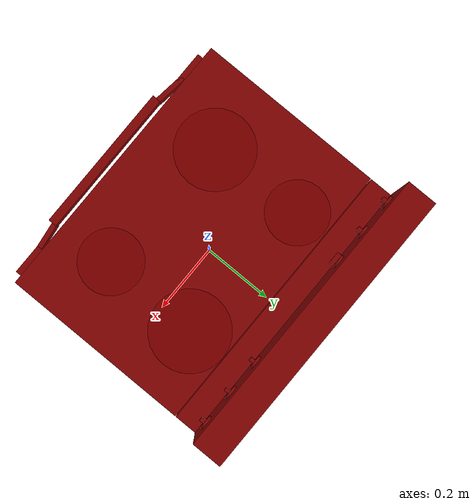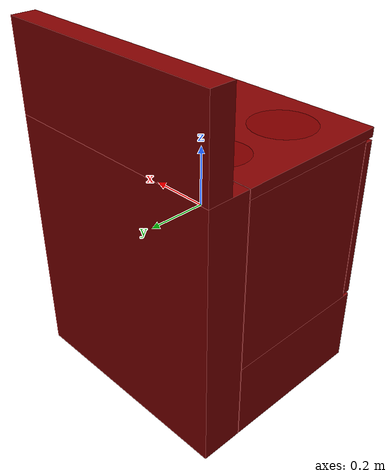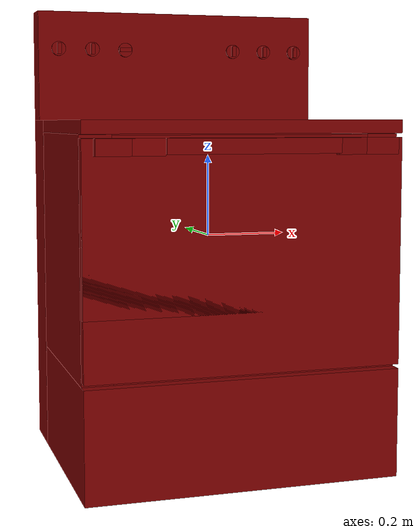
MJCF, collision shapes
<?xml version='1.0' encoding='UTF-8'?>
<mujoco model="model">
  <option timestep="0.002" gravity="0.0 0.0 -9.81"/>
  <compiler angle="radian"/>
  <asset>
    <mesh file="visuals/knob_front_left.obj" name="knob_front_left_vis"/>
    <mesh file="visuals/knob_front_right.obj" name="knob_front_right_vis"/>
    <mesh file="visuals/knob_rear_left.obj" name="knob_rear_left_vis"/>
    <mesh file="visuals/knob_rear_right.obj" name="knob_rear_right_vis"/>
    <mesh file="visuals/Body001.obj" name="Body001_vis"/>
    <mesh file="visuals/Door001.obj" name="Door001_vis"/>
    <mesh file="visuals/Door001_Clear.obj" name="Door001_Clear_vis"/>
    <mesh file="visuals/Knob001.obj" name="Knob001_vis"/>
    <mesh file="visuals/Knob002.obj" name="Knob002_vis"/>
    <mesh file="visuals/Shelf001.obj" name="Shelf001_vis"/>
    <mesh file="visuals/Shelf002.obj" name="Shelf002_vis"/>
    <texture file="visuals/T_BC001.png" name="Body001_material" type="2d"/>
    <material name="Body001_material" rgba="1 1 1 1.0" texture="Body001_material" shininess="0.1" specular="2"/>
    <texture file="visuals/T_BC001.png" name="knob_front_left_material" type="2d"/>
    <material name="knob_front_left_material" rgba="1 1 1 1.0" texture="knob_front_left_material" shininess="0.1" specular="0.3103448502657381"/>
    <texture file="visuals/T_BC001.png" name="knob_front_right_material" type="2d"/>
    <material name="knob_front_right_material" rgba="1 1 1 1.0" texture="knob_front_right_material" shininess="0.1" specular="0.3103448502657381"/>
    <texture file="visuals/T_BC001.png" name="knob_rear_left_material" type="2d"/>
    <material name="knob_rear_left_material" rgba="1 1 1 1.0" texture="knob_rear_left_material" shininess="0.1" specular="0.3103448502657381"/>
    <texture file="visuals/T_BC001.png" name="knob_rear_right_material" type="2d"/>
    <material name="knob_rear_right_material" rgba="1 1 1 1.0" texture="knob_rear_right_material" shininess="0.1" specular="0.3103448502657381"/>
    <texture file="visuals/T_BC001.png" name="Door001_material" type="2d"/>
    <material name="Door001_material" rgba="1 1 1 1.0" texture="Door001_material" shininess="0.1" specular="2"/>
    <material name="Door001_Clear_material" rgba="0.12735895812511444 0.12735895812511444 0.12735895812511444 0.5" shininess="0.5" specular="0.3103448502657381"/>
    <texture file="visuals/T_BC001.png" name="Knob001_material" type="2d"/>
    <material name="Knob001_material" rgba="1 1 1 1.0" texture="Knob001_material" shininess="0.1" specular="0.3103448502657381"/>
    <texture file="visuals/T_BC001.png" name="Knob002_material" type="2d"/>
    <material name="Knob002_material" rgba="1 1 1 1.0" texture="Knob002_material" shininess="0.1" specular="0.3103448502657381"/>
    <texture file="visuals/T_BC001.png" name="Shelf001_material" type="2d"/>
    <material name="Shelf001_material" rgba="1 1 1 1.0" texture="Shelf001_material" shininess="0.1" specular="2"/>
    <texture file="visuals/T_BC001.png" name="Shelf002_material" type="2d"/>
    <material name="Shelf002_material" rgba="1 1 1 1.0" texture="Shelf002_material" shininess="0.1" specular="2"/>
  </asset>
  <default>
    <default class="visual">
      <geom conaffinity="0" contype="0" group="1" type="mesh"/>
    </default>
    <default class="collision">
      <geom group="0" rgba="0.5 0 0 0.5"/>
    </default>
    <default class="spawn">
      <geom group="0" rgba="1 1 1 0.5" contype="0" conaffinity="0"/>
      <site group="0" rgba="1 1 1 0.5"/>
    </default>
    <default class="region">
      <geom group="1" conaffinity="0" contype="0" rgba="0 1 0 0"/>
    </default>
  </default>
  <worldbody>
    <body>
      <body name="object">
        <geom mesh="Body001_vis" type="mesh" solimp="0.998 0.998 0.001" solref="0.001 1" friction="0.95 0.3 0.1" class="visual" material="Body001_material"/>
        <geom class="collision" type="box" pos="0.0 0.2795722484588623 -0.13877899944782257" size="0.38064244389533997 0.0693478137254715 0.42768263816833496" quat="1.0 0.0 0.0 0.0" density="1000.0"/>
        <geom class="collision" type="box" pos="0.0 0.3099370002746582 0.43091511726379395" size="0.38064244389533997 0.0389830619096756 0.14246876537799835" quat="1.0 0.0 0.0 0.0" density="1000.0"/>
        <geom class="collision" type="box" pos="0.0 -0.05006580799818039 0.2736184000968933" size="0.38064244389533997 0.2578248083591461 0.015285268425941467" quat="1.0 0.0 0.0 0.0" density="1000.0"/>
        <geom class="collision" type="box" pos="0.0 -0.05006583780050278 -0.43425706028938293" size="0.38064244389533997 0.2578248381614685 0.1322045624256134" quat="1.0 0.0 0.0 0.0" density="1000.0"/>
        <geom class="collision" type="box" pos="-0.34366121888160706 -0.03492886573076248 -0.022694528102874756" size="0.03698118403553963 0.2426878660917282 0.2797059714794159" quat="1.0 0.0 0.0 0.0" density="1000.0"/>
        <geom class="collision" type="box" pos="0.3433103859424591 -0.03492886573076248 -0.02269453927874565" size="0.03733201324939728 0.2426878660917282 0.2797060012817383" quat="1.0 0.0 0.0 0.0" density="1000.0"/>
        <geom class="collision" type="box" pos="0.0015263110399246216 -0.03492886573076248 -0.25557634234428406" size="0.3090267479419708 0.2426878660917282 0.04682420566678047" quat="1.0 0.0 0.0 0.0" density="1000.0"/>
        <geom class="collision" type="box" pos="0.0015263110399246216 -0.03492886573076248 0.2111244648694992" size="0.3090267479419708 0.2426878660917282 0.04414498805999756" quat="1.0 0.0 0.0 0.0" density="1000.0"/>
        <geom class="collision" type="box" pos="0.300313264131546 -0.026570482179522514 0.10591764003038406" size="0.005835860036313534 0.2343294769525528 0.008943945169448853" quat="1.0 0.0 0.0 0.0" density="1000.0"/>
        <geom class="collision" type="box" pos="0.300313264131546 -0.026570482179522514 0.01064280141144991" size="0.005835860036313534 0.2343294769525528 0.006055832840502262" quat="1.0 0.0 0.0 0.0" density="1000.0"/>
        <geom class="collision" type="box" pos="0.300313264131546 -0.026570482179522514 -0.1666879653930664" size="0.005835860036313534 0.2343294769525528 0.008943945169448853" quat="1.0 0.0 0.0 0.0" density="1000.0"/>
        <geom class="collision" type="box" pos="0.300313264131546 -0.026570482179522514 -0.07734233140945435" size="0.005835860036313534 0.2343294769525528 0.006055832840502262" quat="1.0 0.0 0.0 0.0" density="1000.0"/>
        <geom class="collision" type="box" pos="-0.3004406988620758 -0.026570482179522514 -0.07734233140945435" size="0.005835860036313534 0.2343294769525528 0.006055832840502262" quat="1.0 0.0 0.0 0.0" density="1000.0"/>
        <geom class="collision" type="box" pos="-0.3004406988620758 -0.026570482179522514 -0.1666879653930664" size="0.005835860036313534 0.2343294769525528 0.008943945169448853" quat="1.0 0.0 0.0 0.0" density="1000.0"/>
        <geom class="collision" type="box" pos="-0.3004406988620758 -0.026570482179522514 0.01064280141144991" size="0.005835860036313534 0.2343294769525528 0.006055832840502262" quat="1.0 0.0 0.0 0.0" density="1000.0"/>
        <geom class="collision" type="box" pos="-0.3004406988620758 -0.026570482179522514 0.10591764003038406" size="0.005835860036313534 0.2343294769525528 0.008943945169448853" quat="1.0 0.0 0.0 0.0" density="1000.0"/>
        <body name="knob_front_left">
          <joint axis="0.0 -1.0 0.0" pos="-0.3283602297306061 0.2629822790622711 0.4761384129524231" limited="true" name="knob_front_left_joint" range="0.0 3.6651914291880923" type="hinge" damping="0.05" armature="0.001"/>
          <geom mesh="knob_front_left_vis" type="mesh" solimp="0.998 0.998 0.001" solref="0.001 1" friction="0.95 0.3 0.1" class="visual" material="knob_front_left_material"/>
          <geom class="collision" type="cylinder" pos="-0.3280279338359833 0.2666175961494446 0.47624242305755615" size="0.018600063398480415 0.0029888267163187265" quat="0.7071067094802856 0.7071068286895752 0.0 0.0" density="1000.0"/>
          <geom class="collision" type="box" pos="-0.3280488848686218 0.25801146030426025 0.4762398302555084" size="0.0049294340424239635 0.006057090125977993 0.013924617320299149" quat="1.0 0.0 0.0 0.0" density="1000.0" name="knob_front_left_main"/>
        </body>
        <body name="knob_front_right">
          <joint axis="0.0 -1.0 0.0" pos="0.3326789438724518 0.2629822790622711 0.4761384129524231" limited="true" name="knob_front_right_joint" range="0.0 3.6651914291880923" type="hinge" damping="0.05" armature="0.001"/>
          <geom mesh="knob_front_right_vis" type="mesh" solimp="0.998 0.998 0.001" solref="0.001 1" friction="0.95 0.3 0.1" class="visual" material="knob_front_right_material"/>
          <geom class="collision" type="box" pos="0.33227965235710144 0.25801146030426025 0.4762398302555084" size="0.0049294340424239635 0.006057090125977993 0.013924617320299149" quat="1.0 0.0 0.0 0.0" density="1000.0" name="knob_front_right_main"/>
          <geom class="collision" type="cylinder" pos="0.33230060338974 0.2666175961494446 0.47624242305755615" size="0.018600063398480415 0.0029888267163187265" quat="0.7071067094802856 0.7071068286895752 0.0 0.0" density="1000.0"/>
        </body>
        <body name="knob_rear_left">
          <joint axis="0.0 -1.0 0.0" pos="-0.23796097934246063 0.2629822790622711 0.4761384129524231" limited="true" name="knob_rear_left_joint" range="0.0 3.6651914291880923" type="hinge" damping="0.05" armature="0.001"/>
          <geom mesh="knob_rear_left_vis" type="mesh" solimp="0.998 0.998 0.001" solref="0.001 1" friction="0.95 0.3 0.1" class="visual" material="knob_rear_left_material"/>
          <geom class="collision" type="box" pos="-0.23812277615070343 0.25801146030426025 0.4762398302555084" size="0.0049294340424239635 0.006057090125977993 0.013924617320299149" quat="1.0 0.0 0.0 0.0" density="1000.0" name="knob_rear_left_main"/>
          <geom class="collision" type="cylinder" pos="-0.23810182511806488 0.2666175961494446 0.47624242305755615" size="0.018600063398480415 0.0029888267163187265" quat="0.7071067094802856 0.7071068286895752 0.0 0.0" density="1000.0"/>
        </body>
        <body name="knob_rear_right">
          <joint axis="0.0 -1.0 0.0" pos="0.24363425374031067 0.2629822790622711 0.4761384129524231" limited="true" name="knob_rear_right_joint" range="0.0 3.6651914291880923" type="hinge" damping="0.05" armature="0.001"/>
          <geom mesh="knob_rear_right_vis" type="mesh" solimp="0.998 0.998 0.001" solref="0.001 1" friction="0.95 0.3 0.1" class="visual" material="knob_rear_right_material"/>
          <geom class="collision" type="box" pos="0.24296705424785614 0.25801146030426025 0.4762398302555084" size="0.0049294340424239635 0.006057090125977993 0.013924617320299149" quat="1.0 0.0 0.0 0.0" density="1000.0" name="knob_rear_right_main"/>
          <geom class="collision" type="cylinder" pos="0.2429880052804947 0.2666175961494446 0.47624242305755615" size="0.018600063398480415 0.0029888267163187265" quat="0.7071067094802856 0.7071068286895752 0.0 0.0" density="1000.0"/>
        </body>
        <body name="Door001">
          <joint axis="1.0 0.0 0.0" pos="0.00047386204823851585 -0.3068906366825104 -0.2906047999858856" limited="true" name="Door001_joint" range="0.0 1.5707963267948966" type="hinge" damping="1" frictionloss="1" armature=".01" stiffness="0.05"/>
          <geom mesh="Door001_vis" type="mesh" solimp="0.998 0.998 0.001" solref="0.001 1" friction="0.95 0.3 0.1" class="visual" material="Door001_material"/>
          <geom class="collision" type="box" pos="1.4988472685217857e-08 -0.2937275767326355 -0.02133653126657009" size="0.3806423842906952 0.014163072220981121 0.2701687812805176" quat="1.0 0.0 0.0 0.0" density="1000.0"/>
          <geom class="collision" type="box" pos="0.004498697817325592 -0.3381757140159607 0.23125611245632172" size="0.20504342019557953 0.011501441709697247 0.01757611520588398" quat="1.0 0.0 0.0 0.0" density="1000.0"/>
          <geom class="collision" type="box" pos="-0.31209784746170044 -0.3191778361797333 0.22955064475536346" size="0.04209008067846298 0.01022316049784422 0.019281592220067978" quat="1.0 0.0 0.0 0.0" density="1000.0"/>
          <geom class="collision" type="box" pos="-0.24125535786151886 -0.3267938792705536 0.22955064475536346" size="0.04209008067846298 0.006782665383070707 0.019281592220067978" quat="0.9977936744689941 0.0 -0.0 -0.06639128178358078" density="1000.0"/>
          <geom class="collision" type="box" pos="0.24844783544540405 -0.3267938792705536 0.22955064475536346" size="0.04209008067846298 0.006782665383070707 0.019281592220067978" quat="0.9977936744689941 0.0 0.0 0.06639128178358078" density="1000.0"/>
          <geom class="collision" type="box" pos="0.31929031014442444 -0.3191778361797333 0.22955064475536346" size="0.04209008067846298 0.01022316049784422 0.019281592220067978" quat="1.0 0.0 0.0 0.0" density="1000.0"/>
          <body name="Door001_Clear">
            <geom mesh="Door001_Clear_vis" type="mesh" solimp="0.998 0.998 0.001" solref="0.001 1" friction="0.95 0.3 0.1" class="visual" material="Door001_Clear_material"/>
            <geom class="collision" type="box" pos="1.4988472685217857e-08 -0.30058008432388306 -0.0029357094317674637" size="0.3806423842906952 0.007310488261282444 0.1463773250579834" quat="1.0 0.0 0.0 0.0" density="1000.0"/>
          </body>
        </body>
        <body name="Knob001">
          <joint axis="0.0 1.0 0.0" pos="-0.14835897088050842 0.2629822790622711 0.4754849076271057" limited="true" name="Knob001_joint" range="0.0 5.3756140961425345" type="hinge" damping="0.05" armature="0.001"/>
          <geom mesh="Knob001_vis" type="mesh" solimp="0.998 0.998 0.001" solref="0.001 1" friction="0.95 0.3 0.1" class="visual" material="Knob001_material"/>
          <geom class="collision" type="box" pos="-0.1504794806241989 0.25801146030426025 0.475556880235672" size="0.0049294340424239635 0.006057090125977993 0.015314821153879166" quat="0.7071068286895752 0.0 -0.7071067690849304 0.0" density="1000.0"/>
          <geom class="collision" type="cylinder" pos="-0.14873383939266205 0.2666175961494446 0.47542113065719604" size="0.018600063398480415 0.0029888267163187265" quat="0.7071067094802856 0.7071068286895752 0.0 0.0" density="1000.0"/>
        </body>
        <body name="Knob002">
          <joint axis="0.0 1.0 0.0" pos="0.15376928448677063 0.2629822790622711 0.4761384129524231" limited="true" name="Knob002_joint" range="0.0 5.602506898901798" type="hinge" damping="0.05" armature="0.001"/>
          <geom mesh="Knob002_vis" type="mesh" solimp="0.998 0.998 0.001" solref="0.001 1" friction="0.95 0.3 0.1" class="visual" material="Knob002_material"/>
          <geom class="collision" type="box" pos="0.1534096598625183 0.25801146030426025 0.4762398302555084" size="0.0049294340424239635 0.006057090125977993 0.013924617320299149" quat="1.0 0.0 0.0 0.0" density="1000.0"/>
          <geom class="collision" type="cylinder" pos="0.15343061089515686 0.2666175961494446 0.47624242305755615" size="0.018600063398480415 0.0029888267163187265" quat="0.7071067094802856 0.7071068286895752 0.0 0.0" density="1000.0"/>
        </body>
        <body name="Shelf001">
          <joint axis="0.0 -1.0 0.0" pos="2.0851875888183713e-05 -0.06107108294963837 0.023021399974822998" limited="true" name="Shelf001_joint" range="0.0 0.3" type="slide" damping="1" frictionloss="1" armature=".01" stiffness="0.05"/>
          <geom mesh="Shelf001_vis" type="mesh" solimp="0.998 0.998 0.001" solref="0.001 1" friction="0.95 0.3 0.1" class="visual" material="Shelf001_material"/>
          <geom class="collision" type="box" pos="-0.000394964765291661 -0.06124496832489967 0.0239215437322855" size="0.30155226588249207 0.20644082129001617 0.0038607490714639425" quat="1.0 0.0 0.0 0.0" density="1000.0"/>
        </body>
        <body name="Shelf002">
          <joint axis="0.0 -1.0 0.0" pos="2.0851875888183713e-05 -0.06107108294963837 -0.06526963412761688" limited="true" name="Shelf002_joint" range="0.0 0.3" type="slide" damping="1" frictionloss="1" armature=".01" stiffness="0.05"/>
          <geom mesh="Shelf002_vis" type="mesh" solimp="0.998 0.998 0.001" solref="0.001 1" friction="0.95 0.3 0.1" class="visual" material="Shelf002_material"/>
          <geom class="collision" type="box" pos="-0.000394964765291661 -0.06124496832489967 -0.06457140296697617" size="0.30155226588249207 0.20644082129001617 0.0038607490714639425" quat="1.0 0.0 0.0 0.0" density="1000.0"/>
        </body>
        <geom class="region" name="reg_int" type="box" pos="5.960464477539063e-08 -0.03343991935253143 -0.022333696484565735" size="0.315344899892807 0.24557824432849884 0.21222785115242004"/>
        <site type="cylinder" rgba="0.5 0 0 0.5" size="0.10537806153297424 0.0001" pos="-0.18981723487377167 -0.137325257062912 0.28895366191864014" name="burner_on_front_left"/>
        <site type="cylinder" rgba="0.5 0 0 0.5" size="0.08303980529308319 0.0001" pos="-0.19906458258628845 0.12048176676034927 0.28895366191864014" name="burner_on_rear_left"/>
        <site type="cylinder" rgba="0.5 0 0 0.5" size="0.08506011962890625 0.0001" pos="0.18966242671012878 -0.15796074271202087 0.28895366191864014" name="burner_on_front_right"/>
        <site type="cylinder" rgba="0.5 0 0 0.5" size="0.10537806153297424 0.0001" pos="0.1969548463821411 0.10215207934379578 0.28895366191864014" name="burner_on_rear_right"/>
        <site name="burner_front_left_place_site" type="cylinder" rgba="0.5 0 0 0" size="0.10537806153297424 4.999999873689376e-05" pos="-0.18981723487377167 -0.137325257062912 0.28895366191864014"/>
        <site name="burner_rear_left_place_site" type="cylinder" rgba="0.5 0 0 0" size="0.08303980529308319 4.999999873689376e-05" pos="-0.19906458258628845 0.12048176676034927 0.28895366191864014"/>
        <site name="burner_front_right_place_site" type="cylinder" rgba="0.5 0 0 0" size="0.08506011962890625 4.999999873689376e-05" pos="0.18966242671012878 -0.15796074271202087 0.28895366191864014"/>
        <site name="burner_rear_right_place_site" type="cylinder" rgba="0.5 0 0 0" size="0.10537806153297424 4.999999509891495e-05" pos="0.1969548463821411 0.10215207934379578 0.28895366191864014"/>
        <geom class="region" name="reg_main" type="box" pos="-9.74978320300579e-09 0.02051471173763275 -0.13877899944782257" size="0.3806424140930176 0.32840538024902344 0.42768263816833496"/>
      </body>
    </body>
  </worldbody>
  <actuator>
    <motor name="knob_front_left_joint_actuator" joint="knob_front_left_joint" gear="10"/>
    <motor name="knob_front_right_joint_actuator" joint="knob_front_right_joint" gear="10"/>
    <motor name="knob_rear_left_joint_actuator" joint="knob_rear_left_joint" gear="10"/>
    <motor name="knob_rear_right_joint_actuator" joint="knob_rear_right_joint" gear="10"/>
    <motor name="Door001_joint_actuator" joint="Door001_joint" gear="50"/>
    <motor name="Knob001_joint_actuator" joint="Knob001_joint" gear="50"/>
    <motor name="Knob002_joint_actuator" joint="Knob002_joint" gear="50"/>
    <motor name="Shelf001_joint_actuator" joint="Shelf001_joint" gear="50"/>
    <motor name="Shelf002_joint_actuator" joint="Shelf002_joint" gear="50"/>
  </actuator>
</mujoco>
